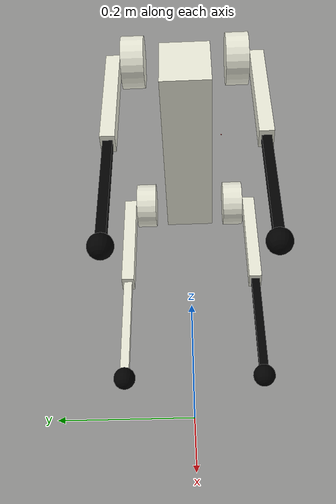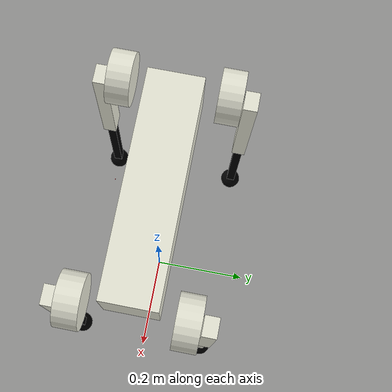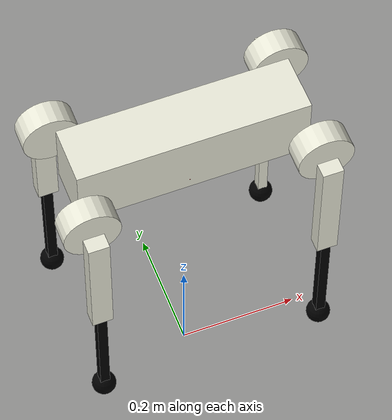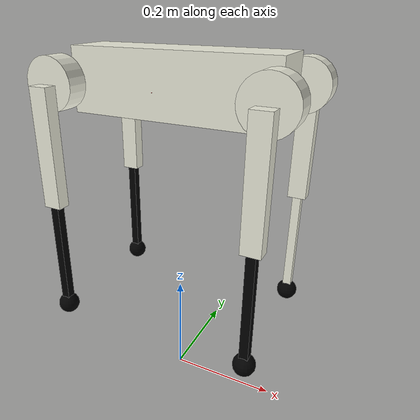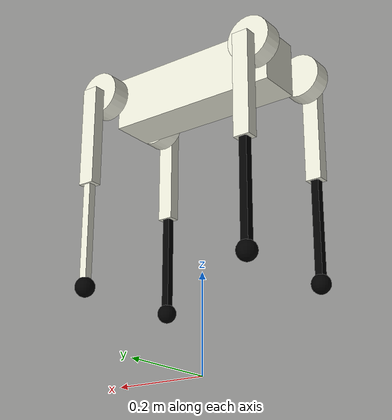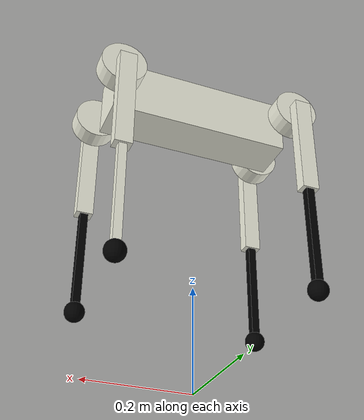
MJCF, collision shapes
<mujoco model="go1_description">
    <compiler angle="radian" meshdir="../meshes/" eulerseq="zyx"/>
    <size njmax="500" nconmax="100" />
    <option gravity='0 0 -9.81' iterations='50' solver='PGS' timestep='0.005'/>

    <asset>
        <mesh name="trunk" file="trunk.stl" />
        <mesh name="hip" file="hip.stl" />
        <mesh name="thigh_mirror" file="thigh_mirror.stl" />
        <mesh name="calf" file="calf.stl" />
        <mesh name="thigh" file="thigh.stl" />
    </asset>
    <asset>
        <texture type="skybox" builtin="gradient" rgb1="1.0 1.0 1.0" rgb2="1.0 1.0 1.0" width="512" height="512"/>
        <texture name="plane" type="2d" builtin="flat" rgb1="1 1 1" rgb2="1 1 1" width="512" height="512" mark="cross" markrgb="0 0 0"/>
        <material name="plane" reflectance="0.0" texture="plane" texrepeat="3 3" texuniform="true"/>
    </asset>
    <worldbody>
        <light directional="true" diffuse=".8 .8 .8" pos="0 0 10" dir="0 0 -1" castshadow="false"/>
        <camera name="track" mode="trackcom" pos="0 -1.3 1.6" xyaxes="1 0 0 0 0.707 0.707"/>
        <geom name='floor' type='plane' conaffinity='15' condim='4' contype='1' solref='0.001 2' friction='0.9 0.2 0.2' rgba="0.5 0.9 0.9 1" material='plane' pos='0 0 -1' size='0 0 1'/>
        <body name="trunk" pos="0 0 0.6"  >        <!-- quat="0 0 1 0" -->
        <inertial pos="0.0116053 0.00442221 0.000106692" quat="0.0111438 0.707126 -0.00935374 0.706938" mass="4.801" diaginertia="0.0447997 0.0366257 0.0162187" />
            <joint type="free" />
            <geom size="0.0005 0.0005 0.0005" type="box" contype="0" conaffinity="0" group="1" />
            <geom type="mesh" contype="0" conaffinity="0" group="1" rgba="0.913725 0.913725 0.847059 1" mesh="trunk" />
            <geom size="0.1881 0.04675 0.057" type="box" rgba="0.913725 0.913725 0.847059 1" />
            <geom size="0.0005 0.0005 0.0005" pos="-0.01592 -0.06659 -0.00617" type="box" contype="0" conaffinity="0" group="1" rgba="0.8 0 0 1" />
            <site name="imu" size="0.01" pos="0 0 0 "/>
            <body name="FR_hip" pos="0.1881 -0.04675 0">
                <inertial pos="-0.00541 0.00074 6e-06" quat="0.506126 0.507401 0.493705 0.492582" mass="0.510299" diaginertia="0.000591107 0.000396595 0.000305077" />
                <joint name="FR_hip_joint" pos="0 0 0" axis="1 0 0" limited="true" range="-0.802851 0.802851" />
                <geom quat="0 1 0 0" type="mesh" contype="0" conaffinity="0" group="1" rgba="0.913725 0.913725 0.847059 1" mesh="hip" />
                <geom size="0.046 0.02" pos="0 -0.045 0" quat="0.707107 0.707107 0 0" type="cylinder" rgba="0.913725 0.913725 0.847059 1" />
                <body name="FR_thigh" pos="0 -0.08 0">
                    <inertial pos="-0.003468 0.018947 -0.032736" quat="0.999266 0.00067676 -0.0382978 0.000639813" mass="0.898919" diaginertia="0.00542178 0.00514246 0.000998869" />
                    <joint name="FR_thigh_joint" pos="0 0 0" axis="0 1 0" limited="true" range="-1.0472 4.18879" />
                    <geom type="mesh" contype="0" conaffinity="0" group="1" rgba="0.913725 0.913725 0.847059 1" mesh="thigh_mirror" />
                    <geom size="0.1065 0.01225 0.017" pos="0 0 -0.1065" quat="0.707107 0 0.707107 0" type="box" rgba="0.913725 0.913725 0.847059 1" />
                    <body name="FR_calf" pos="0 0 -0.213">
                        <inertial pos="0.00455603 0.0009473 -0.147239" quat="0.762045 0.00970173 0.0180098 0.647201" mass="0.218015" diaginertia="0.00399678 0.00398122 3.99428e-05" />
                        <joint name="FR_calf_joint" pos="0 0 0" axis="0 1 0" limited="true" range="-2.69653 -0.916298" />
                        <geom type="mesh" contype="0" conaffinity="0" group="1" rgba="0 0 0 1" mesh="calf" />
                        <geom size="0.1065 0.008 0.008" pos="0 0 -0.1065" quat="0.707107 0 0.707107 0" type="box" rgba="0 0 0 1" />
                        <geom size="0.01" pos="0 0 -0.213" contype="0" conaffinity="0" group="1" rgba="0 0 0 1" />
                        <geom size="0.02" pos="0 0 -0.213" rgba="0 0 0 1" />
                    </body>
                </body>
            </body>
            <body name="FL_hip" pos="0.1881 0.04675 0">
                <inertial pos="-0.00541 -0.00074 6e-06" quat="0.492582 0.493705 0.507401 0.506126" mass="0.510299" diaginertia="0.000591107 0.000396595 0.000305077" />
                <joint name="FL_hip_joint" pos="0 0 0" axis="1 0 0" limited="true" range="-0.802851 0.802851" />
                <geom type="mesh" contype="0" conaffinity="0" group="1" rgba="0.913725 0.913725 0.847059 1" mesh="hip" />
                <geom size="0.046 0.02" pos="0 0.045 0" quat="0.707107 0.707107 0 0" type="cylinder" rgba="0.913725 0.913725 0.847059 1" />
                <body name="FL_thigh" pos="0 0.08 0">
                    <inertial pos="-0.003468 -0.018947 -0.032736" quat="0.999266 -0.00067676 -0.0382978 -0.000639813" mass="0.898919" diaginertia="0.00542178 0.00514246 0.000998869" />
                    <joint name="FL_thigh_joint" pos="0 0 0" axis="0 1 0" limited="true" range="-1.0472 4.18879" />
                    <geom type="mesh" contype="0" conaffinity="0" group="1" rgba="0.913725 0.913725 0.847059 1" mesh="thigh" />
                    <geom size="0.1065 0.01225 0.017" pos="0 0 -0.1065" quat="0.707107 0 0.707107 0" type="box" rgba="0.913725 0.913725 0.847059 1" />
                    <body name="FL_calf" pos="0 0 -0.213">
                        <inertial pos="0.00455603 0.0009473 -0.147239" quat="0.762045 0.00970173 0.0180098 0.647201" mass="0.218015" diaginertia="0.00399678 0.00398122 3.99428e-05" />
                        <joint name="FL_calf_joint" pos="0 0 0" axis="0 1 0" limited="true" range="-2.69653 -0.916298" />
                        <geom type="mesh" contype="0" conaffinity="0" group="1" rgba="0.913725 0.913725 0.847059 1" mesh="calf" />
                        <geom size="0.1065 0.008 0.008" pos="0 0 -0.1065" quat="0.707107 0 0.707107 0" type="box" rgba="0.913725 0.913725 0.847059 1" />
                        <geom size="0.01" pos="0 0 -0.213" contype="0" conaffinity="0" group="1" rgba="0 0 0 1" />
                        <geom size="0.02" pos="0 0 -0.213" rgba="0 0 0 1" />
                    </body>
                </body>
            </body>
            <body name="RR_hip" pos="-0.1881 -0.04675 0">
                <inertial pos="0.00541 0.00074 6e-06" quat="0.493705 0.492582 0.506126 0.507401" mass="0.510299" diaginertia="0.000591107 0.000396595 0.000305077" />
                <joint name="RR_hip_joint" pos="0 0 0" axis="1 0 0" limited="true" range="-0.802851 0.802851" />
                <geom quat="0 0 0 -1" type="mesh" contype="0" conaffinity="0" group="1" rgba="0.913725 0.913725 0.847059 1" mesh="hip" />
                <geom size="0.046 0.02" pos="0 -0.045 0" quat="0.707107 0.707107 0 0" type="cylinder" rgba="0.913725 0.913725 0.847059 1" />
                <body name="RR_thigh" pos="0 -0.08 0">
                    <inertial pos="-0.003468 0.018947 -0.032736" quat="0.999266 0.00067676 -0.0382978 0.000639813" mass="0.898919" diaginertia="0.00542178 0.00514246 0.000998869" />
                    <joint name="RR_thigh_joint" pos="0 0 0" axis="0 1 0" limited="true" range="-1.0472 4.18879" />
                    <geom type="mesh" contype="0" conaffinity="0" group="1" rgba="0.913725 0.913725 0.847059 1" mesh="thigh_mirror" />
                    <geom size="0.1065 0.01225 0.017" pos="0 0 -0.1065" quat="0.707107 0 0.707107 0" type="box" rgba="0.913725 0.913725 0.847059 1" />
                    <body name="RR_calf" pos="0 0 -0.213">
                        <inertial pos="0.00455603 0.0009473 -0.147239" quat="0.762045 0.00970173 0.0180098 0.647201" mass="0.218015" diaginertia="0.00399678 0.00398122 3.99428e-05" />
                        <joint name="RR_calf_joint" pos="0 0 0" axis="0 1 0" limited="true" range="-2.69653 -0.916298" />
                        <geom type="mesh" contype="0" conaffinity="0" group="1" rgba="0 0 0 1" mesh="calf" />
                        <geom size="0.1065 0.008 0.008" pos="0 0 -0.1065" quat="0.707107 0 0.707107 0" type="box" rgba="0 0 0 1" />
                        <geom size="0.01" pos="0 0 -0.213" contype="0" conaffinity="0" group="1" rgba="0 0 0 1" />
                        <geom size="0.02" pos="0 0 -0.213" rgba="0 0 0 1" />
                    </body>
                </body>
            </body>
            <body name="RL_hip" pos="-0.1881 0.04675 0">
                <inertial pos="0.00541 -0.00074 6e-06" quat="0.507401 0.506126 0.492582 0.493705" mass="0.510299" diaginertia="0.000591107 0.000396595 0.000305077" />
                <joint name="RL_hip_joint" pos="0 0 0" axis="1 0 0" limited="true" range="-0.802851 0.802851" />
                <geom quat="0 0 1 0" type="mesh" contype="0" conaffinity="0" group="1" rgba="0.913725 0.913725 0.847059 1" mesh="hip" />
                <geom size="0.046 0.02" pos="0 0.045 0" quat="0.707107 0.707107 0 0" type="cylinder" rgba="0.913725 0.913725 0.847059 1" />
                <body name="RL_thigh" pos="0 0.08 0">
                    <inertial pos="-0.003468 -0.018947 -0.032736" quat="0.999266 -0.00067676 -0.0382978 -0.000639813" mass="0.898919" diaginertia="0.00542178 0.00514246 0.000998869" />
                    <joint name="RL_thigh_joint" pos="0 0 0" axis="0 1 0" limited="true" range="-1.0472 4.18879" />
                    <geom type="mesh" contype="0" conaffinity="0" group="1" rgba="0.913725 0.913725 0.847059 1" mesh="thigh" />
                    <geom size="0.1065 0.01225 0.017" pos="0 0 -0.1065" quat="0.707107 0 0.707107 0" type="box" rgba="0.913725 0.913725 0.847059 1" />
                    <body name="RL_calf" pos="0 0 -0.213">
                        <inertial pos="0.00455603 0.0009473 -0.147239" quat="0.762045 0.00970173 0.0180098 0.647201" mass="0.218015" diaginertia="0.00399678 0.00398122 3.99428e-05" />
                        <joint name="RL_calf_joint" pos="0 0 0" axis="0 1 0" limited="true" range="-2.69653 -0.916298" />
                        <geom type="mesh" contype="0" conaffinity="0" group="1" rgba="0 0 0 1" mesh="calf" />
                        <geom size="0.1065 0.008 0.008" pos="0 0 -0.1065" quat="0.707107 0 0.707107 0" type="box" rgba="0 0 0 1" />
                        <geom size="0.01" pos="0 0 -0.213" contype="0" conaffinity="0" group="1" rgba="0 0 0 1" />
                        <geom size="0.02" pos="0 0 -0.213" rgba="0 0 0 1" />
                    </body>
                </body>
            </body>
        </body>
    </worldbody>

    <actuator>

        <motor name="FR_hip"       gear="1" joint="FR_hip_joint" ctrllimited="true" ctrlrange="-200 200"/>
        <motor name="FR_thigh"     gear="1" joint="FR_thigh_joint" ctrllimited="true" ctrlrange="-200 200"/>
        <motor name="FR_calf"      gear="1" joint="FR_calf_joint" ctrllimited="true" ctrlrange="-200 200"/>
        <motor name="FL_hip"       gear="1" joint="FL_hip_joint" ctrllimited="true" ctrlrange="-200 200"/>
        <motor name="FL_thigh"     gear="1" joint="FL_thigh_joint" ctrllimited="true" ctrlrange="-200 200"/>
        <motor name="FL_calf"      gear="1" joint="FL_calf_joint" ctrllimited="true" ctrlrange="-200 200"/>
        <motor name="RR_hip"       gear="1" joint="RR_hip_joint" ctrllimited="true" ctrlrange="-200 200"/>
        <motor name="RR_thigh"     gear="1" joint="RR_thigh_joint" ctrllimited="true" ctrlrange="-200 200"/>
        <motor name="RR_calf"      gear="1" joint="RR_calf_joint" ctrllimited="true" ctrlrange="-200 200"/>
        <motor name="RL_hip"       gear="1" joint="RL_hip_joint" ctrllimited="true" ctrlrange="-200 200"/>
        <motor name="RL_thigh"     gear="1" joint="RL_thigh_joint" ctrllimited="true" ctrlrange="-200 200"/>
        <motor name="RL_calf"      gear="1" joint="RL_calf_joint" ctrllimited="true" ctrlrange="-200 200"/>

    </actuator>

    <sensor>

        <jointpos name="FR_hip_pos"     joint="FR_hip_joint"/>
        <jointpos name="FR_thigh_pos"   joint="FR_thigh_joint"/>
        <jointpos name="FR_calf_pos"    joint="FR_calf_joint"/>
        <jointpos name="FL_hip_pos"     joint="FL_hip_joint"/>
        <jointpos name="FL_thigh_pos"   joint="FL_thigh_joint"/>
        <jointpos name="FL_calf_pos"    joint="FL_calf_joint"/>
        <jointpos name="RR_hip_pos"     joint="RR_hip_joint"/>
        <jointpos name="RR_thigh_pos"   joint="RR_thigh_joint"/>
        <jointpos name="RR_calf_pos"    joint="RR_calf_joint" />
        <jointpos name="RL_hip_pos"     joint="RL_hip_joint"/>
        <jointpos name="RL_thigh_pos"   joint="RL_thigh_joint"/>
        <jointpos name="RL_calf_pos"    joint="RL_calf_joint"/>

        <jointvel name="FR_hip_vel"     joint="FR_hip_joint"/>
        <jointvel name="FR_thigh_vel"   joint="FR_thigh_joint"/>
        <jointvel name="FR_calf_vel"    joint="FR_calf_joint"/>
        <jointvel name="FL_hip_vel"     joint="FL_hip_joint"/>
        <jointvel name="FL_thigh_vel"   joint="FL_thigh_joint"/>
        <jointvel name="FL_calf_vel"    joint="FL_calf_joint"/>
        <jointvel name="RR_hip_vel"     joint="RR_hip_joint"/>
        <jointvel name="RR_thigh_vel"   joint="RR_thigh_joint"/>
        <jointvel name="RR_calf_vel"    joint="RR_calf_joint" />
        <jointvel name="RL_hip_vel"     joint="RL_hip_joint"/>
        <jointvel name="RL_thigh_vel"   joint="RL_thigh_joint"/>
        <jointvel name="RL_calf_vel"    joint="RL_calf_joint"/>

        <accelerometer name="Body_Acc" site="imu"/>

        <gyro name="Body_Gyro" site="imu"/>

        <framepos name="Body_Pos" objtype="site" objname="imu"/>

        <framequat name="Body_Quat" objtype="site" objname="imu"/>

    </sensor>
</mujoco>
